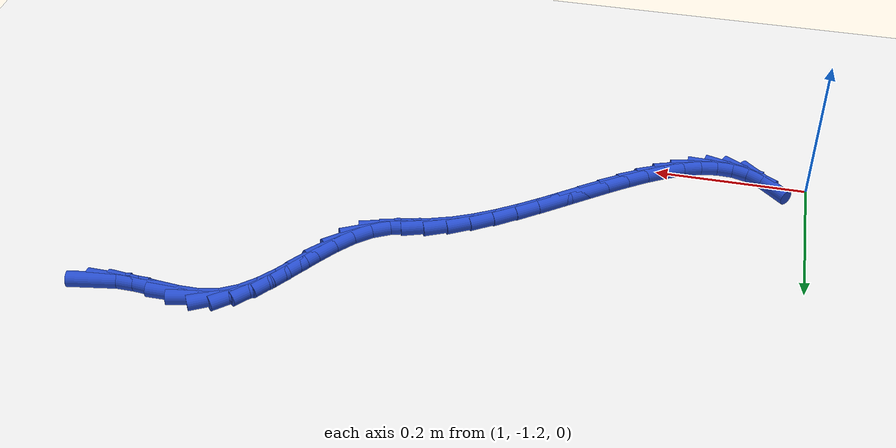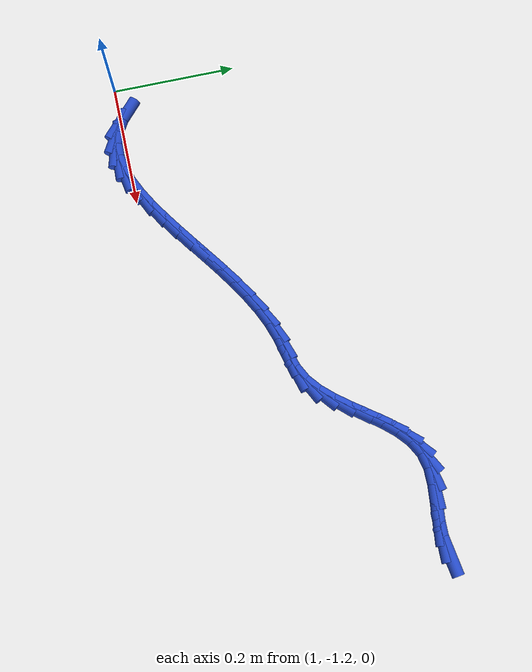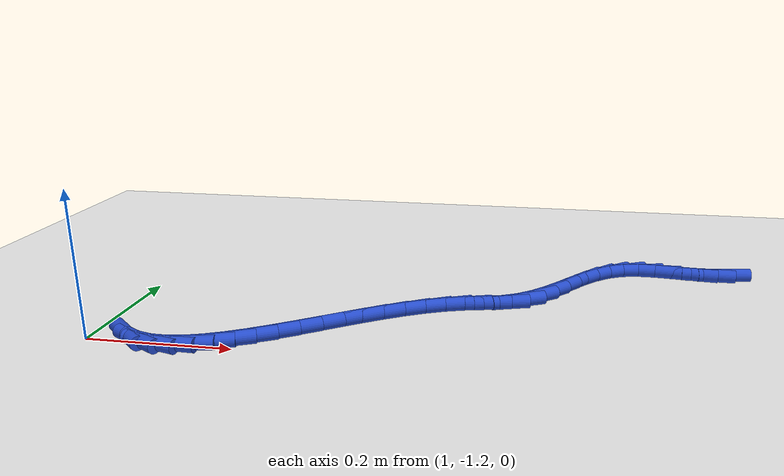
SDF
<sdf version="1.6">
 <world name="default">
  <model name="ground_plane">
   <static>1</static>
   <link name="link">
    <collision name="collision">
     <geometry><plane><normal>0 0 1</normal><size>100 100</size></plane></geometry>
     <surface><friction><ode><mu>100</mu><mu2>50</mu2></ode></friction></surface>
    </collision>
    <visual name="visual">
     <cast_shadows>0</cast_shadows>
     <geometry><plane><normal>0 0 1</normal><size>100 100</size></plane></geometry>
     <material>
      <script><uri>file://media/materials/scripts/gazebo.material</uri><name>Gazebo/WhiteGlow</name></script>
     </material>
    </visual>
   </link>
  </model>
  <model name="line">
   <link name="link_175">
    <pose>1.8497294396114032 -0.8387084600616814 0.01 0 1.57 0.15290227215382338</pose>
    <collision name="collision">
     <geometry><cylinder><radius>0.01</radius><length>0.08</length></cylinder></geometry>
    </collision>
    <visual name="visual">
     <material>
      <script><name>Gazebo/Blue</name><uri>file://media/materials/scripts/gazebo.material</uri></script>
     </material>
     <geometry><cylinder><radius>0.01</radius><length>0.08</length></cylinder></geometry>
    </visual>
   </link>
   <link name="link_176">
    <pose>1.82634590990201 -0.8423119811177887 0.01 0 1.57 -0.020459599159835296</pose>
    <collision name="collision">
     <geometry><cylinder><radius>0.01</radius><length>0.08</length></cylinder></geometry>
    </collision>
    <visual name="visual">
     <material>
      <script><name>Gazebo/Blue</name><uri>file://media/materials/scripts/gazebo.material</uri></script>
     </material>
     <geometry><cylinder><radius>0.01</radius><length>0.08</length></cylinder></geometry>
    </visual>
   </link>
   <link name="link_177">
    <pose>1.800673479497562 -0.8417866601812689 0.01 0 1.57 -0.10643139722348259</pose>
    <collision name="collision">
     <geometry><cylinder><radius>0.01</radius><length>0.08</length></cylinder></geometry>
    </collision>
    <visual name="visual">
     <material>
      <script><name>Gazebo/Blue</name><uri>file://media/materials/scripts/gazebo.material</uri></script>
     </material>
     <geometry><cylinder><radius>0.01</radius><length>0.08</length></cylinder></geometry>
    </visual>
   </link>
   <link name="link_178">
    <pose>1.7735281864895789 -0.8388865901212614 0.01 0 1.57 -0.09838978343245591</pose>
    <collision name="collision">
     <geometry><cylinder><radius>0.01</radius><length>0.08</length></cylinder></geometry>
    </collision>
    <visual name="visual">
     <material>
      <script><name>Gazebo/Blue</name><uri>file://media/materials/scripts/gazebo.material</uri></script>
     </material>
     <geometry><cylinder><radius>0.01</radius><length>0.08</length></cylinder></geometry>
    </visual>
   </link>
   <link name="link_179">
    <pose>1.7461289410262795 -0.8361820515165517 0.01 0 1.57 0.0024541500977075994</pose>
    <collision name="collision">
     <geometry><cylinder><radius>0.01</radius><length>0.08</length></cylinder></geometry>
    </collision>
    <visual name="visual">
     <material>
      <script><name>Gazebo/Blue</name><uri>file://media/materials/scripts/gazebo.material</uri></script>
     </material>
     <geometry><cylinder><radius>0.01</radius><length>0.08</length></cylinder></geometry>
    </visual>
   </link>
   <link name="link_180">
    <pose>1.7196964282763807 -0.8362469210005327 0.01 0 1.57 0.2182015825375235</pose>
    <collision name="collision">
     <geometry><cylinder><radius>0.01</radius><length>0.08</length></cylinder></geometry>
    </collision>
    <visual name="visual">
     <material>
      <script><name>Gazebo/Blue</name><uri>file://media/materials/scripts/gazebo.material</uri></script>
     </material>
     <geometry><cylinder><radius>0.01</radius><length>0.08</length></cylinder></geometry>
    </visual>
   </link>
   <link name="link_181">
    <pose>1.6954377845448467 -0.8416258344711258 0.01 0 1.57 0.4964868812534376</pose>
    <collision name="collision">
     <geometry><cylinder><radius>0.01</radius><length>0.08</length></cylinder></geometry>
    </collision>
    <visual name="visual">
     <material>
      <script><name>Gazebo/Blue</name><uri>file://media/materials/scripts/gazebo.material</uri></script>
     </material>
     <geometry><cylinder><radius>0.01</radius><length>0.08</length></cylinder></geometry>
    </visual>
   </link>
   <link name="link_182">
    <pose>1.673846368712401 -0.8533229756356836 0.01 0 1.57 0.7100185812307224</pose>
    <collision name="collision">
     <geometry><cylinder><radius>0.01</radius><length>0.08</length></cylinder></geometry>
    </collision>
    <visual name="visual">
     <material>
      <script><name>Gazebo/Blue</name><uri>file://media/materials/scripts/gazebo.material</uri></script>
     </material>
     <geometry><cylinder><radius>0.01</radius><length>0.08</length></cylinder></geometry>
    </visual>
   </link>
   <link name="link_183">
    <pose>1.6543627180402687 -0.8700703613958433 0.01 0 1.57 0.8459792717607914</pose>
    <collision name="collision">
     <geometry><cylinder><radius>0.01</radius><length>0.08</length></cylinder></geometry>
    </collision>
    <visual name="visual">
     <material>
      <script><name>Gazebo/Blue</name><uri>file://media/materials/scripts/gazebo.material</uri></script>
     </material>
     <geometry><cylinder><radius>0.01</radius><length>0.08</length></cylinder></geometry>
    </visual>
   </link>
   <link name="link_184">
    <pose>1.6363427846811636 -0.8904174597083324 0.01 0 1.57 0.9180274768300366</pose>
    <collision name="collision">
     <geometry><cylinder><radius>0.01</radius><length>0.08</length></cylinder></geometry>
    </collision>
    <visual name="visual">
     <material>
      <script><name>Gazebo/Blue</name><uri>file://media/materials/scripts/gazebo.material</uri></script>
     </material>
     <geometry><cylinder><radius>0.01</radius><length>0.08</length></cylinder></geometry>
    </visual>
   </link>
   <link name="link_185">
    <pose>1.6191425207878019 -0.9129137385298802 0.01 0 1.57 0.9376262734323414</pose>
    <collision name="collision">
     <geometry><cylinder><radius>0.01</radius><length>0.08</length></cylinder></geometry>
    </collision>
    <visual name="visual">
     <material>
      <script><name>Gazebo/Blue</name><uri>file://media/materials/scripts/gazebo.material</uri></script>
     </material>
     <geometry><cylinder><radius>0.01</radius><length>0.08</length></cylinder></geometry>
    </visual>
   </link>
   <link name="link_186">
    <pose>1.6021178785128969 -0.9361086658172142 0.01 0 1.57 0.9087165668564294</pose>
    <collision name="collision">
     <geometry><cylinder><radius>0.01</radius><length>0.08</length></cylinder></geometry>
    </collision>
    <visual name="visual">
     <material>
      <script><name>Gazebo/Blue</name><uri>file://media/materials/scripts/gazebo.material</uri></script>
     </material>
     <geometry><cylinder><radius>0.01</radius><length>0.08</length></cylinder></geometry>
    </visual>
   </link>
   <link name="link_187">
    <pose>1.5846248100091642 -0.9585517095270633 0.01 0 1.57 0.8274646243092554</pose>
    <collision name="collision">
     <geometry><cylinder><radius>0.01</radius><length>0.08</length></cylinder></geometry>
    </collision>
    <visual name="visual">
     <material>
      <script><name>Gazebo/Blue</name><uri>file://media/materials/scripts/gazebo.material</uri></script>
     </material>
     <geometry><cylinder><radius>0.01</radius><length>0.08</length></cylinder></geometry>
    </visual>
   </link>
   <link name="link_188">
    <pose>1.566019267429318 -0.9787923376161549 0.01 0 1.57 0.6836021212010864</pose>
    <collision name="collision">
     <geometry><cylinder><radius>0.01</radius><length>0.08</length></cylinder></geometry>
    </collision>
    <visual name="visual">
     <material>
      <script><name>Gazebo/Blue</name><uri>file://media/materials/scripts/gazebo.material</uri></script>
     </material>
     <geometry><cylinder><radius>0.01</radius><length>0.08</length></cylinder></geometry>
    </visual>
   </link>
   <link name="link_189">
    <pose>1.5456572029260733 -0.9953800180412185 0.01 0 1.57 0.46869007480911107</pose>
    <collision name="collision">
     <geometry><cylinder><radius>0.01</radius><length>0.08</length></cylinder></geometry>
    </collision>
    <visual name="visual">
     <material>
      <script><name>Gazebo/Blue</name><uri>file://media/materials/scripts/gazebo.material</uri></script>
     </material>
     <geometry><cylinder><radius>0.01</radius><length>0.08</length></cylinder></geometry>
    </visual>
   </link>
   <link name="link_190">
    <pose>1.5229062099435833 -1.0068992795964282 0.01 0 1.57 0.27369203435659606</pose>
    <collision name="collision">
     <geometry><cylinder><radius>0.01</radius><length>0.08</length></cylinder></geometry>
    </collision>
    <visual name="visual">
     <material>
      <script><name>Gazebo/Blue</name><uri>file://media/materials/scripts/gazebo.material</uri></script>
     </material>
     <geometry><cylinder><radius>0.01</radius><length>0.08</length></cylinder></geometry>
    </visual>
   </link>
   <link name="link_191">
    <pose>1.4978020289837186 -1.0139469531907341 0.01 0 1.57 0.23209799437087045</pose>
    <collision name="collision">
     <geometry><cylinder><radius>0.01</radius><length>0.08</length></cylinder></geometry>
    </collision>
    <visual name="visual">
     <material>
      <script><name>Gazebo/Blue</name><uri>file://media/materials/scripts/gazebo.material</uri></script>
     </material>
     <geometry><cylinder><radius>0.01</radius><length>0.08</length></cylinder></geometry>
    </visual>
   </link>
   <link name="link_192">
    <pose>1.4713989550566982 -1.0201875168438352 0.01 0 1.57 0.32043978849899507</pose>
    <collision name="collision">
     <geometry><cylinder><radius>0.01</radius><length>0.08</length></cylinder></geometry>
    </collision>
    <visual name="visual">
     <material>
      <script><name>Gazebo/Blue</name><uri>file://media/materials/scripts/gazebo.material</uri></script>
     </material>
     <geometry><cylinder><radius>0.01</radius><length>0.08</length></cylinder></geometry>
    </visual>
   </link>
   <link name="link_193">
    <pose>1.4447160159934076 -1.0290429856072918 0.01 0 1.57 0.42168507284878487</pose>
    <collision name="collision">
     <geometry><cylinder><radius>0.01</radius><length>0.08</length></cylinder></geometry>
    </collision>
    <visual name="visual">
     <material>
      <script><name>Gazebo/Blue</name><uri>file://media/materials/scripts/gazebo.material</uri></script>
     </material>
     <geometry><cylinder><radius>0.01</radius><length>0.08</length></cylinder></geometry>
    </visual>
   </link>
   <link name="link_194">
    <pose>1.4180628320185242 -1.0409994757950451 0.01 0 1.57 0.49884371601271815</pose>
    <collision name="collision">
     <geometry><cylinder><radius>0.01</radius><length>0.08</length></cylinder></geometry>
    </collision>
    <visual name="visual">
     <material>
      <script><name>Gazebo/Blue</name><uri>file://media/materials/scripts/gazebo.material</uri></script>
     </material>
     <geometry><cylinder><radius>0.01</radius><length>0.08</length></cylinder></geometry>
    </visual>
   </link>
   <link name="link_195">
    <pose>1.3914911273144537 -1.0554757953664056 0.01 0 1.57 0.5555784988478547</pose>
    <collision name="collision">
     <geometry><cylinder><radius>0.01</radius><length>0.08</length></cylinder></geometry>
    </collision>
    <visual name="visual">
     <material>
      <script><name>Gazebo/Blue</name><uri>file://media/materials/scripts/gazebo.material</uri></script>
     </material>
     <geometry><cylinder><radius>0.01</radius><length>0.08</length></cylinder></geometry>
    </visual>
   </link>
   <link name="link_196">
    <pose>1.365052258755966 -1.0718892321700866 0.01 0 1.57 0.594950668380119</pose>
    <collision name="collision">
     <geometry><cylinder><radius>0.01</radius><length>0.08</length></cylinder></geometry>
    </collision>
    <visual name="visual">
     <material>
      <script><name>Gazebo/Blue</name><uri>file://media/materials/scripts/gazebo.material</uri></script>
     </material>
     <geometry><cylinder><radius>0.01</radius><length>0.08</length></cylinder></geometry>
    </visual>
   </link>
   <link name="link_197">
    <pose>1.3387975832178332 -1.0896570740548026 0.01 0 1.57 0.6190891957376038</pose>
    <collision name="collision">
     <geometry><cylinder><radius>0.01</radius><length>0.08</length></cylinder></geometry>
    </collision>
    <visual name="visual">
     <material>
      <script><name>Gazebo/Blue</name><uri>file://media/materials/scripts/gazebo.material</uri></script>
     </material>
     <geometry><cylinder><radius>0.01</radius><length>0.08</length></cylinder></geometry>
    </visual>
   </link>
   <link name="link_198">
    <pose>1.3127784575748251 -1.1081966088692667 0.01 0 1.57 0.6291564777350118</pose>
    <collision name="collision">
     <geometry><cylinder><radius>0.01</radius><length>0.08</length></cylinder></geometry>
    </collision>
    <visual name="visual">
     <material>
      <script><name>Gazebo/Blue</name><uri>file://media/materials/scripts/gazebo.material</uri></script>
     </material>
     <geometry><cylinder><radius>0.01</radius><length>0.08</length></cylinder></geometry>
    </visual>
   </link>
   <link name="link_199">
    <pose>1.2870462387017119 -1.1269251244621938 0.01 0 1.57 0.6253480024747672</pose>
    <collision name="collision">
     <geometry><cylinder><radius>0.01</radius><length>0.08</length></cylinder></geometry>
    </collision>
    <visual name="visual">
     <material>
      <script><name>Gazebo/Blue</name><uri>file://media/materials/scripts/gazebo.material</uri></script>
     </material>
     <geometry><cylinder><radius>0.01</radius><length>0.08</length></cylinder></geometry>
    </visual>
   </link>
   <link name="link_200">
    <pose>1.2616522834732666 -1.145259908682297 0.01 0 1.57 0.6068316784414717</pose>
    <collision name="collision">
     <geometry><cylinder><radius>0.01</radius><length>0.08</length></cylinder></geometry>
    </collision>
    <visual name="visual">
     <material>
      <script><name>Gazebo/Blue</name><uri>file://media/materials/scripts/gazebo.material</uri></script>
     </material>
     <geometry><cylinder><radius>0.01</radius><length>0.08</length></cylinder></geometry>
    </visual>
   </link>
   <link name="link_201">
    <pose>1.2366479487642585 -1.1626182493782897 0.01 0 1.57 0.5715810087461137</pose>
    <collision name="collision">
     <geometry><cylinder><radius>0.01</radius><length>0.08</length></cylinder></geometry>
    </collision>
    <visual name="visual">
     <material>
      <script><name>Gazebo/Blue</name><uri>file://media/materials/scripts/gazebo.material</uri></script>
     </material>
     <geometry><cylinder><radius>0.01</radius><length>0.08</length></cylinder></geometry>
    </visual>
   </link>
   <link name="link_202">
    <pose>1.2120845914494593 -1.1784174343988871 0.01 0 1.57 0.5160856534415986</pose>
    <collision name="collision">
     <geometry><cylinder><radius>0.01</radius><length>0.08</length></cylinder></geometry>
    </collision>
    <visual name="visual">
     <material>
      <script><name>Gazebo/Blue</name><uri>file://media/materials/scripts/gazebo.material</uri></script>
     </material>
     <geometry><cylinder><radius>0.01</radius><length>0.08</length></cylinder></geometry>
    </visual>
   </link>
   <link name="link_203">
    <pose>1.1880135684036397 -1.1920747515928019 0.01 0 1.57 0.434996510925366</pose>
    <collision name="collision">
     <geometry><cylinder><radius>0.01</radius><length>0.08</length></cylinder></geometry>
    </collision>
    <visual name="visual">
     <material>
      <script><name>Gazebo/Blue</name><uri>file://media/materials/scripts/gazebo.material</uri></script>
     </material>
     <geometry><cylinder><radius>0.01</radius><length>0.08</length></cylinder></geometry>
    </visual>
   </link>
   <link name="link_204">
    <pose>1.16448623650157 -1.2030074888087483 0.01 0 1.57 0.32101845635896853</pose>
    <collision name="collision">
     <geometry><cylinder><radius>0.01</radius><length>0.08</length></cylinder></geometry>
    </collision>
    <visual name="visual">
     <material>
      <script><name>Gazebo/Blue</name><uri>file://media/materials/scripts/gazebo.material</uri></script>
     </material>
     <geometry><cylinder><radius>0.01</radius><length>0.08</length></cylinder></geometry>
    </visual>
   </link>
   <link name="link_205">
    <pose>1.141553952618022 -1.2106329338954405 0.01 0 1.57 0.16607094115801047</pose>
    <collision name="collision">
     <geometry><cylinder><radius>0.01</radius><length>0.08</length></cylinder></geometry>
    </collision>
    <visual name="visual">
     <material>
      <script><name>Gazebo/Blue</name><uri>file://media/materials/scripts/gazebo.material</uri></script>
     </material>
     <geometry><cylinder><radius>0.01</radius><length>0.08</length></cylinder></geometry>
    </visual>
   </link>
   <link name="link_206">
    <pose>1.119268073627766 -1.2143683747015923 0.01 0 1.57 -0.03413865031251175</pose>
    <collision name="collision">
     <geometry><cylinder><radius>0.01</radius><length>0.08</length></cylinder></geometry>
    </collision>
    <visual name="visual">
     <material>
      <script><name>Gazebo/Blue</name><uri>file://media/materials/scripts/gazebo.material</uri></script>
     </material>
     <geometry><cylinder><radius>0.01</radius><length>0.08</length></cylinder></geometry>
    </visual>
   </link>
   <link name="link_207">
    <pose>1.0976799564055728 -1.2136310990759174 0.01 0 1.57 -0.2711292040939288</pose>
    <collision name="collision">
     <geometry><cylinder><radius>0.01</radius><length>0.08</length></cylinder></geometry>
    </collision>
    <visual name="visual">
     <material>
      <script><name>Gazebo/Blue</name><uri>file://media/materials/scripts/gazebo.material</uri></script>
     </material>
     <geometry><cylinder><radius>0.01</radius><length>0.08</length></cylinder></geometry>
    </visual>
   </link>
   <link name="link_208">
    <pose>1.0768409578262128 -1.2078383948671292 0.01 0 1.57 -0.5184031960255323</pose>
    <collision name="collision">
     <geometry><cylinder><radius>0.01</radius><length>0.08</length></cylinder></geometry>
    </collision>
    <visual name="visual">
     <material>
      <script><name>Gazebo/Blue</name><uri>file://media/materials/scripts/gazebo.material</uri></script>
     </material>
     <geometry><cylinder><radius>0.01</radius><length>0.08</length></cylinder></geometry>
    </visual>
   </link>
   <link name="link_209">
    <pose>1.056802434764458 -1.1964075499239422 0.01 0 1.57 -0.7320728388082874</pose>
    <collision name="collision">
     <geometry><cylinder><radius>0.01</radius><length>0.08</length></cylinder></geometry>
    </collision>
    <visual name="visual">
     <material>
      <script><name>Gazebo/Blue</name><uri>file://media/materials/scripts/gazebo.material</uri></script>
     </material>
     <geometry><cylinder><radius>0.01</radius><length>0.08</length></cylinder></geometry>
    </visual>
   </link>
  </model>
 </world>
</sdf>
